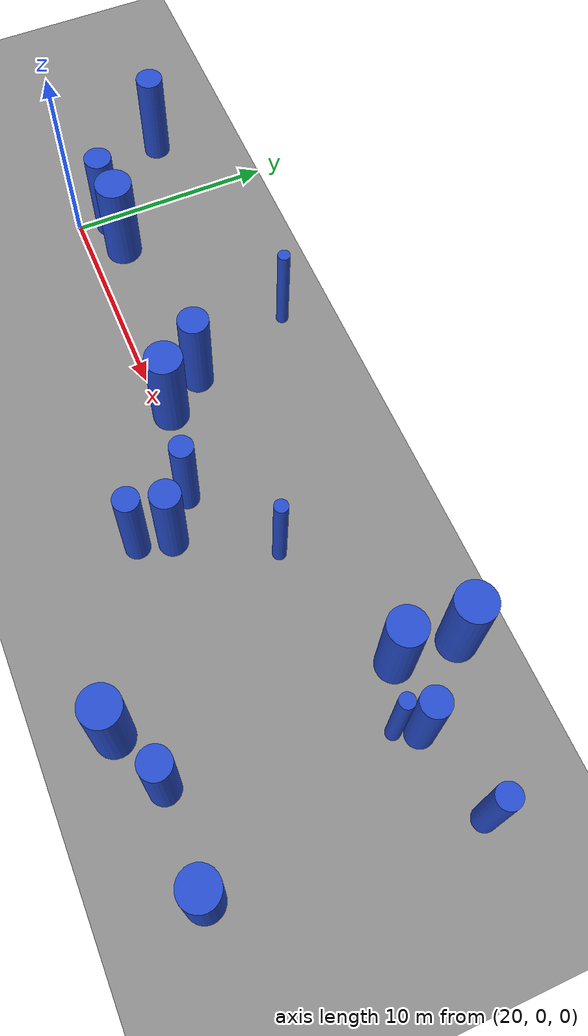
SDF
<sdf version="1.7">
 <world name="forest_randomization_v1">
  <gravity>0 0 -9.8</gravity>
  <light name="sun" type="directional">
   <pose>30 0 20 0 -0 0</pose>
   <diffuse>0.8 0.8 0.8 1</diffuse>
   <specular>0.2 0.2 0.2 1</specular>
   <direction>-0.5 0.5 -1</direction>
   <attenuation><range>10</range></attenuation>
   <spot><inner_angle>0</inner_angle><outer_angle>0</outer_angle><falloff>0</falloff></spot>
  </light>
  <model name="forest_ground_60x20">
   <static>1</static>
   <pose>30 0 0 0 -0 0</pose>
   <link name="link">
    <collision name="collision">
     <geometry><plane><normal>0 0 1</normal><size>60 20</size></plane></geometry>
    </collision>
    <visual name="visual">
     <cast_shadows>0</cast_shadows>
     <geometry><plane><normal>0 0 1</normal><size>60 20</size></plane></geometry>
     <material><ambient>0.45 0.45 0.45 1</ambient><diffuse>0.55 0.55 0.55 1</diffuse></material>
    </visual>
   </link>
  </model>
  <physics name="default_physics" type="ode">
   <max_step_size>0.001</max_step_size>
   <real_time_update_rate>1000</real_time_update_rate>
   <real_time_factor>1</real_time_factor>
  </physics>
  <scene>
   <ambient>0.4 0.4 0.4 1</ambient>
   <background>0.7 0.7 0.7 1</background>
   <shadows>1</shadows>
   <grid>1</grid>
  </scene>
  <magnetic_field>6e-06 2.3e-05 -4.2e-05</magnetic_field>
  <atmosphere type="adiabatic"/>
  <spherical_coordinates>
   <surface_model>EARTH_WGS84</surface_model>
   <latitude_deg>0</latitude_deg>
   <longitude_deg>0</longitude_deg>
   <elevation>0</elevation>
   <heading_deg>0</heading_deg>
  </spherical_coordinates>
  <model name="sparse_0">
   <static>0</static>
   <link name="link">
    <inertial>
     <mass>2</mass>
     <inertia><ixx>4.38553</ixx><ixy>0</ixy><ixz>0</ixz><iyy>4.38553</iyy><iyz>0</iyz><izz>0.437728</izz></inertia>
    </inertial>
    <collision name="collision">
     <geometry><cylinder><length>5</length><radius>0.66161</radius></cylinder></geometry>
     <surface><contact><collide_without_contact>1</collide_without_contact></contact></surface>
    </collision>
    <visual name="visual">
     <geometry><cylinder><length>5</length><radius>0.66161</radius></cylinder></geometry>
     <material>
      <script><uri>file://media/materials/scripts/gazebo.material</uri><name>Gazebo/Blue</name></script>
     </material>
    </visual>
    <gravity>0</gravity>
   </link>
   <pose>20.4431 1.48551 2.5 0 -0 0</pose>
  </model>
  <model name="sparse_1">
   <static>0</static>
   <link name="link">
    <inertial>
     <mass>2</mass>
     <inertia><ixx>4.55669</ixx><ixy>0</ixy><ixz>0</ixz><iyy>4.55669</iyy><iyz>0</iyz><izz>0.780041</izz></inertia>
    </inertial>
    <collision name="collision">
     <geometry><cylinder><length>5</length><radius>0.883199</radius></cylinder></geometry>
     <surface><contact><collide_without_contact>1</collide_without_contact></contact></surface>
    </collision>
    <visual name="visual">
     <geometry><cylinder><length>5</length><radius>0.883199</radius></cylinder></geometry>
     <material>
      <script><uri>file://media/materials/scripts/gazebo.material</uri><name>Gazebo/Blue</name></script>
     </material>
    </visual>
    <gravity>0</gravity>
   </link>
   <pose>22.2369 1.64421 2.5 0 -0 0</pose>
  </model>
  <model name="sparse_2">
   <static>0</static>
   <link name="link">
    <inertial>
     <mass>2</mass>
     <inertia><ixx>4.38358</ixx><ixy>0</ixy><ixz>0</ixz><iyy>4.38358</iyy><iyz>0</iyz><izz>0.433836</izz></inertia>
    </inertial>
    <collision name="collision">
     <geometry><cylinder><length>5</length><radius>0.658662</radius></cylinder></geometry>
     <surface><contact><collide_without_contact>1</collide_without_contact></contact></surface>
    </collision>
    <visual name="visual">
     <geometry><cylinder><length>5</length><radius>0.658662</radius></cylinder></geometry>
     <material>
      <script><uri>file://media/materials/scripts/gazebo.material</uri><name>Gazebo/Blue</name></script>
     </material>
    </visual>
    <gravity>0</gravity>
   </link>
   <pose>16.4554 5.55603 2.5 0 -0 0</pose>
  </model>
  <model name="medium_3">
   <static>0</static>
   <link name="link">
    <inertial>
     <mass>2</mass>
     <inertia><ixx>4.42419</ixx><ixy>0</ixy><ixz>0</ixz><iyy>4.42419</iyy><iyz>0</iyz><izz>0.515054</izz></inertia>
    </inertial>
    <collision name="collision">
     <geometry><cylinder><length>5</length><radius>0.717673</radius></cylinder></geometry>
     <surface><contact><collide_without_contact>1</collide_without_contact></contact></surface>
    </collision>
    <visual name="visual">
     <geometry><cylinder><length>5</length><radius>0.717673</radius></cylinder></geometry>
     <material>
      <script><uri>file://media/materials/scripts/gazebo.material</uri><name>Gazebo/Blue</name></script>
     </material>
    </visual>
    <gravity>0</gravity>
   </link>
   <pose>30.9317 2.33431 2.5 0 -0 0</pose>
  </model>
  <model name="medium_4">
   <static>0</static>
   <link name="link">
    <inertial>
     <mass>2</mass>
     <inertia><ixx>4.33382</ixx><ixy>0</ixy><ixz>0</ixz><iyy>4.33382</iyy><iyz>0</iyz><izz>0.334304</izz></inertia>
    </inertial>
    <collision name="collision">
     <geometry><cylinder><length>5</length><radius>0.57819</radius></cylinder></geometry>
     <surface><contact><collide_without_contact>1</collide_without_contact></contact></surface>
    </collision>
    <visual name="visual">
     <geometry><cylinder><length>5</length><radius>0.57819</radius></cylinder></geometry>
     <material>
      <script><uri>file://media/materials/scripts/gazebo.material</uri><name>Gazebo/Blue</name></script>
     </material>
    </visual>
    <gravity>0</gravity>
   </link>
   <pose>37.9236 -3.23945 2.5 0 -0 0</pose>
  </model>
  <model name="medium_5">
   <static>0</static>
   <link name="link">
    <inertial>
     <mass>2</mass>
     <inertia>
      <ixx>4.20946</ixx>
      <ixy>0</ixy>
      <ixz>0</ixz>
      <iyy>4.20946</iyy>
      <iyz>0</iyz>
      <izz>0.0855766</izz>
     </inertia>
    </inertial>
    <collision name="collision">
     <geometry><cylinder><length>5</length><radius>0.292535</radius></cylinder></geometry>
     <surface><contact><collide_without_contact>1</collide_without_contact></contact></surface>
    </collision>
    <visual name="visual">
     <geometry><cylinder><length>5</length><radius>0.292535</radius></cylinder></geometry>
     <material>
      <script><uri>file://media/materials/scripts/gazebo.material</uri><name>Gazebo/Blue</name></script>
     </material>
    </visual>
    <gravity>0</gravity>
   </link>
   <pose>29.2229 7.4186 2.5 0 -0 0</pose>
  </model>
  <model name="medium_6">
   <static>0</static>
   <link name="link">
    <inertial>
     <mass>2</mass>
     <inertia><ixx>4.31116</ixx><ixy>0</ixy><ixz>0</ixz><iyy>4.31116</iyy><iyz>0</iyz><izz>0.288993</izz></inertia>
    </inertial>
    <collision name="collision">
     <geometry><cylinder><length>5</length><radius>0.537581</radius></cylinder></geometry>
     <surface><contact><collide_without_contact>1</collide_without_contact></contact></surface>
    </collision>
    <visual name="visual">
     <geometry><cylinder><length>5</length><radius>0.537581</radius></cylinder></geometry>
     <material>
      <script><uri>file://media/materials/scripts/gazebo.material</uri><name>Gazebo/Blue</name></script>
     </material>
    </visual>
    <gravity>0</gravity>
   </link>
   <pose>36.5622 -0.357358 2.5 0 -0 0</pose>
  </model>
  <model name="medium_7">
   <static>0</static>
   <link name="link">
    <inertial>
     <mass>2</mass>
     <inertia><ixx>4.53572</ixx><ixy>0</ixy><ixz>0</ixz><iyy>4.53572</iyy><iyz>0</iyz><izz>0.738098</izz></inertia>
    </inertial>
    <collision name="collision">
     <geometry><cylinder><length>5</length><radius>0.859127</radius></cylinder></geometry>
     <surface><contact><collide_without_contact>1</collide_without_contact></contact></surface>
    </collision>
    <visual name="visual">
     <geometry><cylinder><length>5</length><radius>0.859127</radius></cylinder></geometry>
     <material>
      <script><uri>file://media/materials/scripts/gazebo.material</uri><name>Gazebo/Blue</name></script>
     </material>
    </visual>
    <gravity>0</gravity>
   </link>
   <pose>32.2341 0.462319 2.5 0 -0 0</pose>
  </model>
  <model name="medium_8">
   <static>0</static>
   <link name="link">
    <inertial>
     <mass>2</mass>
     <inertia><ixx>4.39518</ixx><ixy>0</ixy><ixz>0</ixz><iyy>4.39518</iyy><iyz>0</iyz><izz>0.457021</izz></inertia>
    </inertial>
    <collision name="collision">
     <geometry><cylinder><length>5</length><radius>0.676033</radius></cylinder></geometry>
     <surface><contact><collide_without_contact>1</collide_without_contact></contact></surface>
    </collision>
    <visual name="visual">
     <geometry><cylinder><length>5</length><radius>0.676033</radius></cylinder></geometry>
     <material>
      <script><uri>file://media/materials/scripts/gazebo.material</uri><name>Gazebo/Blue</name></script>
     </material>
    </visual>
    <gravity>0</gravity>
   </link>
   <pose>38.3085 -1.71544 2.5 0 -0 0</pose>
  </model>
  <model name="dense_9">
   <static>0</static>
   <link name="link">
    <inertial>
     <mass>2</mass>
     <inertia><ixx>4.55128</ixx><ixy>0</ixy><ixz>0</ixz><iyy>4.55128</iyy><iyz>0</iyz><izz>0.769233</izz></inertia>
    </inertial>
    <collision name="collision">
     <geometry><cylinder><length>5</length><radius>0.877059</radius></cylinder></geometry>
     <surface><contact><collide_without_contact>1</collide_without_contact></contact></surface>
    </collision>
    <visual name="visual">
     <geometry><cylinder><length>5</length><radius>0.877059</radius></cylinder></geometry>
     <material>
      <script><uri>file://media/materials/scripts/gazebo.material</uri><name>Gazebo/Blue</name></script>
     </material>
    </visual>
    <gravity>0</gravity>
   </link>
   <pose>45.3462 -6.86342 2.5 0 -0 0</pose>
  </model>
  <model name="dense_10">
   <static>0</static>
   <link name="link">
    <inertial>
     <mass>2</mass>
     <inertia>
      <ixx>4.21639</ixx>
      <ixy>0</ixy>
      <ixz>0</ixz>
      <iyy>4.21639</iyy>
      <iyz>0</iyz>
      <izz>0.0994437</izz>
     </inertia>
    </inertial>
    <collision name="collision">
     <geometry><cylinder><length>5</length><radius>0.315347</radius></cylinder></geometry>
     <surface><contact><collide_without_contact>1</collide_without_contact></contact></surface>
    </collision>
    <visual name="visual">
     <geometry><cylinder><length>5</length><radius>0.315347</radius></cylinder></geometry>
     <material>
      <script><uri>file://media/materials/scripts/gazebo.material</uri><name>Gazebo/Blue</name></script>
     </material>
    </visual>
    <gravity>0</gravity>
   </link>
   <pose>40.6059 2.37075 2.5 0 -0 0</pose>
  </model>
  <model name="dense_11">
   <static>0</static>
   <link name="link">
    <inertial>
     <mass>2</mass>
     <inertia><ixx>4.3051</ixx><ixy>0</ixy><ixz>0</ixz><iyy>4.3051</iyy><iyz>0</iyz><izz>0.276867</izz></inertia>
    </inertial>
    <collision name="collision">
     <geometry><cylinder><length>5</length><radius>0.526181</radius></cylinder></geometry>
     <surface><contact><collide_without_contact>1</collide_without_contact></contact></surface>
    </collision>
    <visual name="visual">
     <geometry><cylinder><length>5</length><radius>0.526181</radius></cylinder></geometry>
     <material>
      <script><uri>file://media/materials/scripts/gazebo.material</uri><name>Gazebo/Blue</name></script>
     </material>
    </visual>
    <gravity>0</gravity>
   </link>
   <pose>53.8762 5.32192 2.5 0 -0 0</pose>
  </model>
  <model name="dense_12">
   <static>0</static>
   <link name="link">
    <inertial>
     <mass>2</mass>
     <inertia><ixx>4.51413</ixx><ixy>0</ixy><ixz>0</ixz><iyy>4.51413</iyy><iyz>0</iyz><izz>0.694918</izz></inertia>
    </inertial>
    <collision name="collision">
     <geometry><cylinder><length>5</length><radius>0.833618</radius></cylinder></geometry>
     <surface><contact><collide_without_contact>1</collide_without_contact></contact></surface>
    </collision>
    <visual name="visual">
     <geometry><cylinder><length>5</length><radius>0.833618</radius></cylinder></geometry>
     <material>
      <script><uri>file://media/materials/scripts/gazebo.material</uri><name>Gazebo/Blue</name></script>
     </material>
    </visual>
    <gravity>0</gravity>
   </link>
   <pose>52.4333 -5.75439 2.5 0 -0 0</pose>
  </model>
  <model name="dense_13">
   <static>0</static>
   <link name="link">
    <inertial>
     <mass>2</mass>
     <inertia><ixx>4.57398</ixx><ixy>0</ixy><ixz>0</ixz><iyy>4.57398</iyy><iyz>0</iyz><izz>0.814624</izz></inertia>
    </inertial>
    <collision name="collision">
     <geometry><cylinder><length>5</length><radius>0.902565</radius></cylinder></geometry>
     <surface><contact><collide_without_contact>1</collide_without_contact></contact></surface>
    </collision>
    <visual name="visual">
     <geometry><cylinder><length>5</length><radius>0.902565</radius></cylinder></geometry>
     <material>
      <script><uri>file://media/materials/scripts/gazebo.material</uri><name>Gazebo/Blue</name></script>
     </material>
    </visual>
    <gravity>0</gravity>
   </link>
   <pose>47.1518 7.65789 2.5 0 -0 0</pose>
  </model>
  <model name="dense_14">
   <static>0</static>
   <link name="link">
    <inertial>
     <mass>2</mass>
     <inertia><ixx>4.52738</ixx><ixy>0</ixy><ixz>0</ixz><iyy>4.52738</iyy><iyz>0</iyz><izz>0.721428</izz></inertia>
    </inertial>
    <collision name="collision">
     <geometry><cylinder><length>5</length><radius>0.849369</radius></cylinder></geometry>
     <surface><contact><collide_without_contact>1</collide_without_contact></contact></surface>
    </collision>
    <visual name="visual">
     <geometry><cylinder><length>5</length><radius>0.849369</radius></cylinder></geometry>
     <material>
      <script><uri>file://media/materials/scripts/gazebo.material</uri><name>Gazebo/Blue</name></script>
     </material>
    </visual>
    <gravity>0</gravity>
   </link>
   <pose>46.9876 4.81457 2.5 0 -0 0</pose>
  </model>
  <model name="dense_15">
   <static>0</static>
   <link name="link">
    <inertial>
     <mass>2</mass>
     <inertia><ixx>4.3717</ixx><ixy>0</ixy><ixz>0</ixz><iyy>4.3717</iyy><iyz>0</iyz><izz>0.410058</izz></inertia>
    </inertial>
    <collision name="collision">
     <geometry><cylinder><length>5</length><radius>0.640358</radius></cylinder></geometry>
     <surface><contact><collide_without_contact>1</collide_without_contact></contact></surface>
    </collision>
    <visual name="visual">
     <geometry><cylinder><length>5</length><radius>0.640358</radius></cylinder></geometry>
     <material>
      <script><uri>file://media/materials/scripts/gazebo.material</uri><name>Gazebo/Blue</name></script>
     </material>
    </visual>
    <gravity>0</gravity>
   </link>
   <pose>49.9541 4.48847 2.5 0 -0 0</pose>
  </model>
  <model name="dense_16">
   <static>0</static>
   <link name="link">
    <inertial>
     <mass>2</mass>
     <inertia><ixx>4.22403</ixx><ixy>0</ixy><ixz>0</ixz><iyy>4.22403</iyy><iyz>0</iyz><izz>0.114722</izz></inertia>
    </inertial>
    <collision name="collision">
     <geometry><cylinder><length>5</length><radius>0.338706</radius></cylinder></geometry>
     <surface><contact><collide_without_contact>1</collide_without_contact></contact></surface>
    </collision>
    <visual name="visual">
     <geometry><cylinder><length>5</length><radius>0.338706</radius></cylinder></geometry>
     <material>
      <script><uri>file://media/materials/scripts/gazebo.material</uri><name>Gazebo/Blue</name></script>
     </material>
    </visual>
    <gravity>0</gravity>
   </link>
   <pose>49.504 3.53012 2.5 0 -0 0</pose>
  </model>
  <model name="dense_17">
   <static>0</static>
   <link name="link">
    <inertial>
     <mass>2</mass>
     <inertia><ixx>4.40232</ixx><ixy>0</ixy><ixz>0</ixz><iyy>4.40232</iyy><iyz>0</iyz><izz>0.471303</izz></inertia>
    </inertial>
    <collision name="collision">
     <geometry><cylinder><length>5</length><radius>0.686515</radius></cylinder></geometry>
     <surface><contact><collide_without_contact>1</collide_without_contact></contact></surface>
    </collision>
    <visual name="visual">
     <geometry><cylinder><length>5</length><radius>0.686515</radius></cylinder></geometry>
     <material>
      <script><uri>file://media/materials/scripts/gazebo.material</uri><name>Gazebo/Blue</name></script>
     </material>
    </visual>
    <gravity>0</gravity>
   </link>
   <pose>48.0093 -5.70635 2.5 0 -0 0</pose>
  </model>
 </world>
</sdf>
